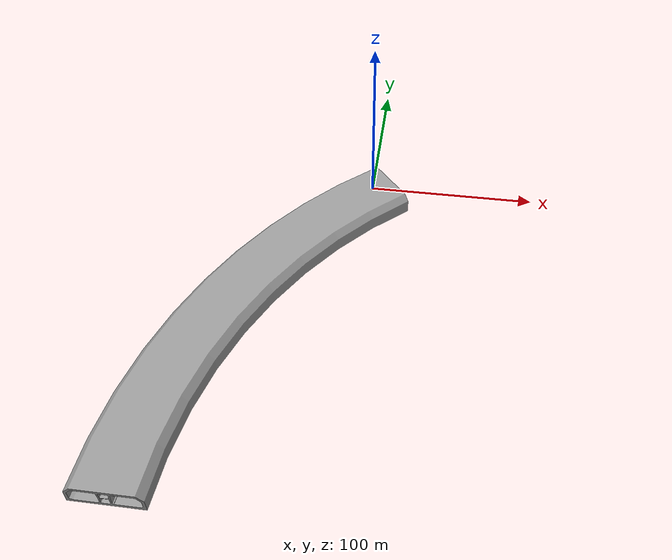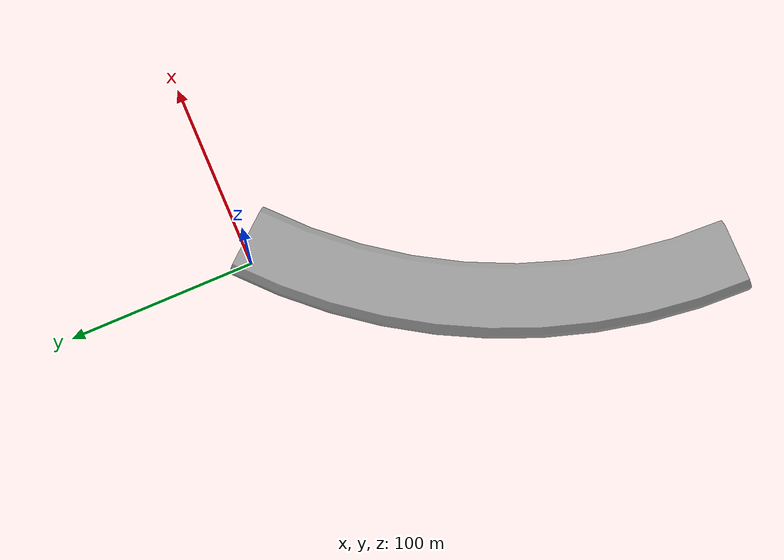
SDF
<?xml version='1.0'?>
<sdf version='1.6'>

    <model name='suidao'>
      <static>true</static>
      <pose frame=''>-3 130 18.0 0 0 0</pose>
      <link name='link'>
        <inertial>
          <mass>27246000</mass>
          <inertia>
            <ixx>16</ixx>
            <ixy>0</ixy>
            <ixz>0</ixz>
            <iyy>16</iyy>
            <iyz>0</iyz>
            <izz>16</izz>
          </inertia>
        </inertial>
        <collision name='collision'>
          <geometry>
              <mesh>
                <uri>model://suidao/meshes/suidao.dae</uri>
                <scale>1 1 1</scale>
              </mesh>
          </geometry>
          <max_contacts>10</max_contacts>
          <surface>
            <friction>
              <ode>
                <mu>100.0</mu>
                <mu2>100.0</mu2>
              </ode>
            </friction>
            <contact>
              <ode>
                <kp>10000000.0</kp>
                <kd>1.0</kd>
                <min_depth>0.001</min_depth>
                <max_vel>0.1</max_vel>
              </ode>
            </contact>
          </surface>
        </collision>
        <visual name='visual'>
          <geometry>
              <mesh>
                <uri>model://suidao/meshes/suidao.dae</uri>
                <scale>1 1 1</scale>
              </mesh>
          </geometry>
          <material>
            <script>
              <name>Gazebo/Grey</name>
              <uri>file://media/materials/scripts/gazebo.material</uri>
            </script>
          </material>
        </visual>
        <self_collide>0</self_collide>
        <kinematic>0</kinematic>
      </link>
    </model>

</sdf>
